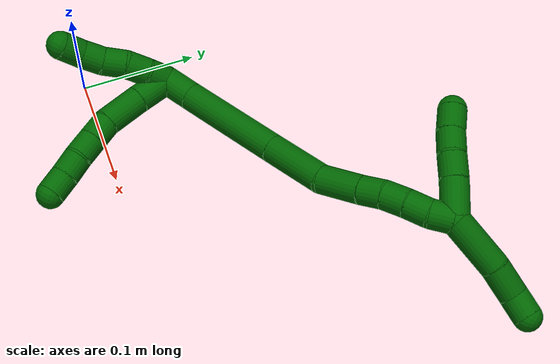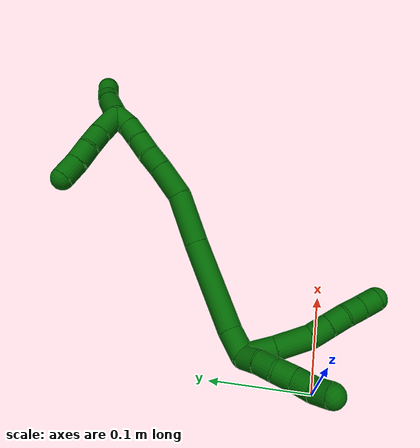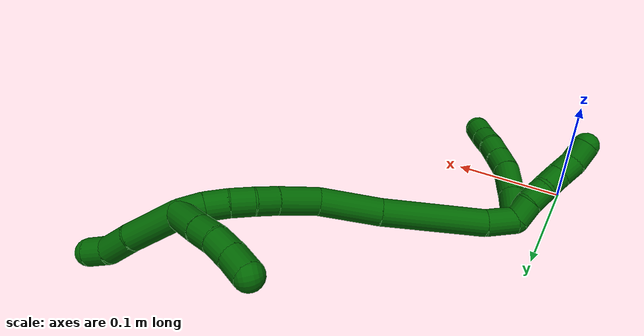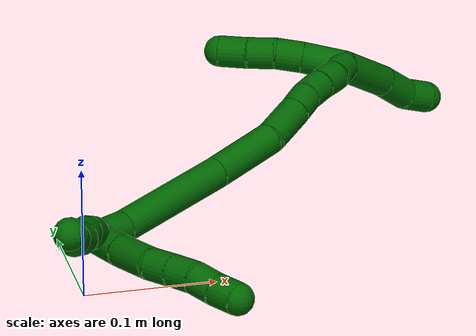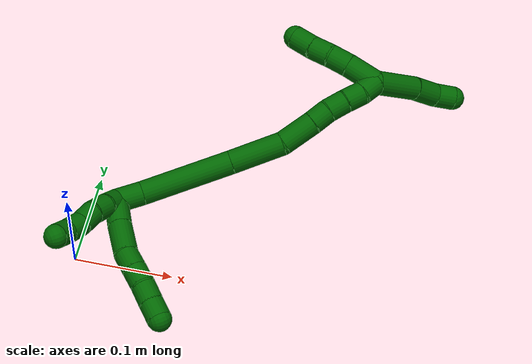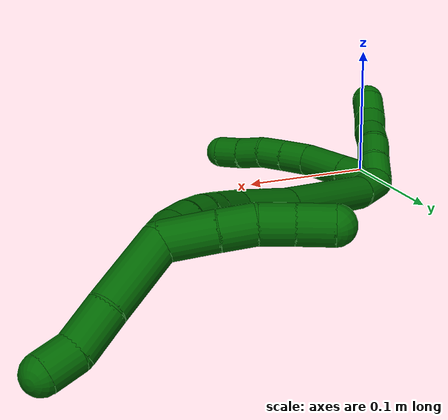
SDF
<sdf version="1.7">
 <world name="default">
  <model name="6">
   <static>0</static>
   <link name="6">
    <collision name="collision-cylinder-e_1_2_8">
     <pose>-0.002727 -0.015014 -0.005365 1.91398 -0.16939 -0.239826</pose>
     <geometry><cylinder><radius>0.0125</radius><length>0.03235</length></cylinder></geometry>
     <surface>
      <friction><ode><mu>1.16</mu><mu2>1.16</mu2><slip1>0</slip1><slip2>0</slip2></ode></friction>
      <contact><ode><kp>1e+06</kp><kd>1</kd><max_vel>0</max_vel><min_depth>0.001</min_depth></ode></contact>
     </surface>
    </collision>
    <visual name="visual-cylinder-e_1_2_8">
     <pose>-0.002727 -0.015014 -0.005365 1.91398 -0.16939 -0.239826</pose>
     <geometry><cylinder><radius>0.0125</radius><length>0.03235</length></cylinder></geometry>
     <material><ambient>0 0.392157 0.003922 1</ambient></material>
    </visual>
    <collision name="collision-cylinder-e_2_8_9">
     <pose>-0.009181 -0.047083 -0.015846 1.86223 -0.206349 -0.276545</pose>
     <geometry><cylinder><radius>0.0125</radius><length>0.036384</length></cylinder></geometry>
     <surface>
      <friction><ode><mu>1.16</mu><mu2>1.16</mu2><slip1>0</slip1><slip2>0</slip2></ode></friction>
      <contact><ode><kp>1e+06</kp><kd>1</kd><max_vel>0</max_vel><min_depth>0.001</min_depth></ode></contact>
     </surface>
    </collision>
    <visual name="visual-cylinder-e_2_8_9">
     <pose>-0.009181 -0.047083 -0.015846 1.86223 -0.206349 -0.276545</pose>
     <geometry><cylinder><radius>0.0125</radius><length>0.036384</length></cylinder></geometry>
     <material><ambient>0 0.392157 0.003922 1</ambient></material>
    </visual>
    <collision name="collision-cylinder-e_3_9_10">
     <pose>-0.014906 -0.074464 -0.021426 1.61575 -0.190956 -0.199682</pose>
     <geometry><cylinder><radius>0.0125</radius><length>0.021056</length></cylinder></geometry>
     <surface>
      <friction><ode><mu>1.16</mu><mu2>1.16</mu2><slip1>0</slip1><slip2>0</slip2></ode></friction>
      <contact><ode><kp>1e+06</kp><kd>1</kd><max_vel>0</max_vel><min_depth>0.001</min_depth></ode></contact>
     </surface>
    </collision>
    <visual name="visual-cylinder-e_3_9_10">
     <pose>-0.014906 -0.074464 -0.021426 1.61575 -0.190956 -0.199682</pose>
     <geometry><cylinder><radius>0.0125</radius><length>0.021056</length></cylinder></geometry>
     <material><ambient>0 0.392157 0.003922 1</ambient></material>
    </visual>
    <collision name="collision-cylinder-e_4_10_11">
     <pose>-0.018649 -0.094714 -0.022348 1.61683 -0.173784 -0.18193</pose>
     <geometry><cylinder><radius>0.0125</radius><length>0.020172</length></cylinder></geometry>
     <surface>
      <friction><ode><mu>1.16</mu><mu2>1.16</mu2><slip1>0</slip1><slip2>0</slip2></ode></friction>
      <contact><ode><kp>1e+06</kp><kd>1</kd><max_vel>0</max_vel><min_depth>0.001</min_depth></ode></contact>
     </surface>
    </collision>
    <visual name="visual-cylinder-e_4_10_11">
     <pose>-0.018649 -0.094714 -0.022348 1.61683 -0.173784 -0.18193</pose>
     <geometry><cylinder><radius>0.0125</radius><length>0.020172</length></cylinder></geometry>
     <material><ambient>0 0.392157 0.003922 1</ambient></material>
    </visual>
    <collision name="collision-cylinder-e_5_11_12">
     <pose>-0.020183 -0.114628 -0.023293 1.61965 0.02091 0.021958</pose>
     <geometry><cylinder><radius>0.0125</radius><length>0.020009</length></cylinder></geometry>
     <surface>
      <friction><ode><mu>1.16</mu><mu2>1.16</mu2><slip1>0</slip1><slip2>0</slip2></ode></friction>
      <contact><ode><kp>1e+06</kp><kd>1</kd><max_vel>0</max_vel><min_depth>0.001</min_depth></ode></contact>
     </surface>
    </collision>
    <visual name="visual-cylinder-e_5_11_12">
     <pose>-0.020183 -0.114628 -0.023293 1.61965 0.02091 0.021958</pose>
     <geometry><cylinder><radius>0.0125</radius><length>0.020009</length></cylinder></geometry>
     <material><ambient>0 0.392157 0.003922 1</ambient></material>
    </visual>
    <collision name="collision-cylinder-e_6_12_6">
     <pose>-0.020785 -0.134584 -0.024338 1.62656 -0.081048 -0.085693</pose>
     <geometry><cylinder><radius>0.0125</radius><length>0.02003</length></cylinder></geometry>
     <surface>
      <friction><ode><mu>1.16</mu><mu2>1.16</mu2><slip1>0</slip1><slip2>0</slip2></ode></friction>
      <contact><ode><kp>1e+06</kp><kd>1</kd><max_vel>0</max_vel><min_depth>0.001</min_depth></ode></contact>
     </surface>
    </collision>
    <visual name="visual-cylinder-e_6_12_6">
     <pose>-0.020785 -0.134584 -0.024338 1.62656 -0.081048 -0.085693</pose>
     <geometry><cylinder><radius>0.0125</radius><length>0.02003</length></cylinder></geometry>
     <material><ambient>0 0.392157 0.003922 1</ambient></material>
    </visual>
    <collision name="collision-cylinder-e_1_2_13">
     <pose>-0.005664 -0.002795 -0.007753 2.7956 -0.602097 -2.11635</pose>
     <geometry><cylinder><radius>0.0125</radius><length>0.02</length></cylinder></geometry>
     <surface>
      <friction><ode><mu>1.16</mu><mu2>1.16</mu2><slip1>0</slip1><slip2>0</slip2></ode></friction>
      <contact><ode><kp>1e+06</kp><kd>1</kd><max_vel>0</max_vel><min_depth>0.001</min_depth></ode></contact>
     </surface>
    </collision>
    <visual name="visual-cylinder-e_1_2_13">
     <pose>-0.005664 -0.002795 -0.007753 2.7956 -0.602097 -2.11635</pose>
     <geometry><cylinder><radius>0.0125</radius><length>0.02</length></cylinder></geometry>
     <material><ambient>0 0.392157 0.003922 1</ambient></material>
    </visual>
    <collision name="collision-cylinder-e_2_13_14">
     <pose>-0.015381 -0.008291 -0.02424 2.84162 -0.417372 -1.90198</pose>
     <geometry><cylinder><radius>0.0125</radius><length>0.02</length></cylinder></geometry>
     <surface>
      <friction><ode><mu>1.16</mu><mu2>1.16</mu2><slip1>0</slip1><slip2>0</slip2></ode></friction>
      <contact><ode><kp>1e+06</kp><kd>1</kd><max_vel>0</max_vel><min_depth>0.001</min_depth></ode></contact>
     </surface>
    </collision>
    <visual name="visual-cylinder-e_2_13_14">
     <pose>-0.015381 -0.008291 -0.02424 2.84162 -0.417372 -1.90198</pose>
     <geometry><cylinder><radius>0.0125</radius><length>0.02</length></cylinder></geometry>
     <material><ambient>0 0.392157 0.003922 1</ambient></material>
    </visual>
    <collision name="collision-cylinder-e_3_14_15">
     <pose>-0.021479 -0.015242 -0.041791 2.69257 -0.205912 -0.84978</pose>
     <geometry><cylinder><radius>0.0125</radius><length>0.02</length></cylinder></geometry>
     <surface>
      <friction><ode><mu>1.16</mu><mu2>1.16</mu2><slip1>0</slip1><slip2>0</slip2></ode></friction>
      <contact><ode><kp>1e+06</kp><kd>1</kd><max_vel>0</max_vel><min_depth>0.001</min_depth></ode></contact>
     </surface>
    </collision>
    <visual name="visual-cylinder-e_3_14_15">
     <pose>-0.021479 -0.015242 -0.041791 2.69257 -0.205912 -0.84978</pose>
     <geometry><cylinder><radius>0.0125</radius><length>0.02</length></cylinder></geometry>
     <material><ambient>0 0.392157 0.003922 1</ambient></material>
    </visual>
    <collision name="collision-cylinder-e_4_15_16">
     <pose>-0.026936 -0.022237 -0.0596 2.84515 -0.348233 -1.73389</pose>
     <geometry><cylinder><radius>0.0125</radius><length>0.02</length></cylinder></geometry>
     <surface>
      <friction><ode><mu>1.16</mu><mu2>1.16</mu2><slip1>0</slip1><slip2>0</slip2></ode></friction>
      <contact><ode><kp>1e+06</kp><kd>1</kd><max_vel>0</max_vel><min_depth>0.001</min_depth></ode></contact>
     </surface>
    </collision>
    <visual name="visual-cylinder-e_4_15_16">
     <pose>-0.026936 -0.022237 -0.0596 2.84515 -0.348233 -1.73389</pose>
     <geometry><cylinder><radius>0.0125</radius><length>0.02</length></cylinder></geometry>
     <material><ambient>0 0.392157 0.003922 1</ambient></material>
    </visual>
    <collision name="collision-cylinder-e_5_16_5">
     <pose>-0.036226 -0.027811 -0.076169 2.78447 -0.628327 -2.12754</pose>
     <geometry><cylinder><radius>0.0125</radius><length>0.02</length></cylinder></geometry>
     <surface>
      <friction><ode><mu>1.16</mu><mu2>1.16</mu2><slip1>0</slip1><slip2>0</slip2></ode></friction>
      <contact><ode><kp>1e+06</kp><kd>1</kd><max_vel>0</max_vel><min_depth>0.001</min_depth></ode></contact>
     </surface>
    </collision>
    <visual name="visual-cylinder-e_5_16_5">
     <pose>-0.036226 -0.027811 -0.076169 2.78447 -0.628327 -2.12754</pose>
     <geometry><cylinder><radius>0.0125</radius><length>0.02</length></cylinder></geometry>
     <material><ambient>0 0.392157 0.003922 1</ambient></material>
    </visual>
    <collision name="collision-cylinder-e_1_2_17">
     <pose>-0.000982 -0.001677 0.013924 0.119845 -0.069895 -0.004195</pose>
     <geometry><cylinder><radius>0.0125</radius><length>0.028118</length></cylinder></geometry>
     <surface>
      <friction><ode><mu>1.16</mu><mu2>1.16</mu2><slip1>0</slip1><slip2>0</slip2></ode></friction>
      <contact><ode><kp>1e+06</kp><kd>1</kd><max_vel>0</max_vel><min_depth>0.001</min_depth></ode></contact>
     </surface>
    </collision>
    <visual name="visual-cylinder-e_1_2_17">
     <pose>-0.000982 -0.001677 0.013924 0.119845 -0.069895 -0.004195</pose>
     <geometry><cylinder><radius>0.0125</radius><length>0.028118</length></cylinder></geometry>
     <material><ambient>0 0.392157 0.003922 1</ambient></material>
    </visual>
    <collision name="collision-cylinder-e_2_17_18">
     <pose>-0.014971 -0.011216 0.073738 0.169677 -0.272419 -0.02331</pose>
     <geometry><cylinder><radius>0.0125</radius><length>0.096682</length></cylinder></geometry>
     <surface>
      <friction><ode><mu>1.16</mu><mu2>1.16</mu2><slip1>0</slip1><slip2>0</slip2></ode></friction>
      <contact><ode><kp>1e+06</kp><kd>1</kd><max_vel>0</max_vel><min_depth>0.001</min_depth></ode></contact>
     </surface>
    </collision>
    <visual name="visual-cylinder-e_2_17_18">
     <pose>-0.014971 -0.011216 0.073738 0.169677 -0.272419 -0.02331</pose>
     <geometry><cylinder><radius>0.0125</radius><length>0.096682</length></cylinder></geometry>
     <material><ambient>0 0.392157 0.003922 1</ambient></material>
    </visual>
    <collision name="collision-cylinder-e_3_18_19">
     <pose>-0.037395 -0.023985 0.145682 0.186165 -0.34133 -0.032174</pose>
     <geometry><cylinder><radius>0.0125</radius><length>0.056269</length></cylinder></geometry>
     <surface>
      <friction><ode><mu>1.16</mu><mu2>1.16</mu2><slip1>0</slip1><slip2>0</slip2></ode></friction>
      <contact><ode><kp>1e+06</kp><kd>1</kd><max_vel>0</max_vel><min_depth>0.001</min_depth></ode></contact>
     </surface>
    </collision>
    <visual name="visual-cylinder-e_3_18_19">
     <pose>-0.037395 -0.023985 0.145682 0.186165 -0.34133 -0.032174</pose>
     <geometry><cylinder><radius>0.0125</radius><length>0.056269</length></cylinder></geometry>
     <material><ambient>0 0.392157 0.003922 1</ambient></material>
    </visual>
    <collision name="collision-cylinder-e_4_19_20">
     <pose>-0.052775 -0.026889 0.189158 -0.114419 -0.327689 0.018937</pose>
     <geometry><cylinder><radius>0.0125</radius><length>0.037048</length></cylinder></geometry>
     <surface>
      <friction><ode><mu>1.16</mu><mu2>1.16</mu2><slip1>0</slip1><slip2>0</slip2></ode></friction>
      <contact><ode><kp>1e+06</kp><kd>1</kd><max_vel>0</max_vel><min_depth>0.001</min_depth></ode></contact>
     </surface>
    </collision>
    <visual name="visual-cylinder-e_4_19_20">
     <pose>-0.052775 -0.026889 0.189158 -0.114419 -0.327689 0.018937</pose>
     <geometry><cylinder><radius>0.0125</radius><length>0.037048</length></cylinder></geometry>
     <material><ambient>0 0.392157 0.003922 1</ambient></material>
    </visual>
    <collision name="collision-cylinder-e_5_20_21">
     <pose>-0.061789 -0.02316 0.216045 -0.18055 -0.307253 0.028032</pose>
     <geometry><cylinder><radius>0.0125</radius><length>0.020184</length></cylinder></geometry>
     <surface>
      <friction><ode><mu>1.16</mu><mu2>1.16</mu2><slip1>0</slip1><slip2>0</slip2></ode></friction>
      <contact><ode><kp>1e+06</kp><kd>1</kd><max_vel>0</max_vel><min_depth>0.001</min_depth></ode></contact>
     </surface>
    </collision>
    <visual name="visual-cylinder-e_5_20_21">
     <pose>-0.061789 -0.02316 0.216045 -0.18055 -0.307253 0.028032</pose>
     <geometry><cylinder><radius>0.0125</radius><length>0.020184</length></cylinder></geometry>
     <material><ambient>0 0.392157 0.003922 1</ambient></material>
    </visual>
    <collision name="collision-cylinder-e_6_21_22">
     <pose>-0.066966 -0.020869 0.235548 -0.056018 -0.208182 0.005854</pose>
     <geometry><cylinder><radius>0.0125</radius><length>0.020557</length></cylinder></geometry>
     <surface>
      <friction><ode><mu>1.16</mu><mu2>1.16</mu2><slip1>0</slip1><slip2>0</slip2></ode></friction>
      <contact><ode><kp>1e+06</kp><kd>1</kd><max_vel>0</max_vel><min_depth>0.001</min_depth></ode></contact>
     </surface>
    </collision>
    <visual name="visual-cylinder-e_6_21_22">
     <pose>-0.066966 -0.020869 0.235548 -0.056018 -0.208182 0.005854</pose>
     <geometry><cylinder><radius>0.0125</radius><length>0.020557</length></cylinder></geometry>
     <material><ambient>0 0.392157 0.003922 1</ambient></material>
    </visual>
    <collision name="collision-cylinder-e_7_22_23">
     <pose>-0.070214 -0.019979 0.255779 -0.032068 -0.109808 0.001763</pose>
     <geometry><cylinder><radius>0.0125</radius><length>0.020514</length></cylinder></geometry>
     <surface>
      <friction><ode><mu>1.16</mu><mu2>1.16</mu2><slip1>0</slip1><slip2>0</slip2></ode></friction>
      <contact><ode><kp>1e+06</kp><kd>1</kd><max_vel>0</max_vel><min_depth>0.001</min_depth></ode></contact>
     </surface>
    </collision>
    <visual name="visual-cylinder-e_7_22_23">
     <pose>-0.070214 -0.019979 0.255779 -0.032068 -0.109808 0.001763</pose>
     <geometry><cylinder><radius>0.0125</radius><length>0.020514</length></cylinder></geometry>
     <material><ambient>0 0.392157 0.003922 1</ambient></material>
    </visual>
    <collision name="collision-cylinder-e_8_23_1">
     <pose>-0.071932 -0.017195 0.275968 -0.240973 -0.057638 0.00698</pose>
     <geometry><cylinder><radius>0.0125</radius><length>0.020629</length></cylinder></geometry>
     <surface>
      <friction><ode><mu>1.16</mu><mu2>1.16</mu2><slip1>0</slip1><slip2>0</slip2></ode></friction>
      <contact><ode><kp>1e+06</kp><kd>1</kd><max_vel>0</max_vel><min_depth>0.001</min_depth></ode></contact>
     </surface>
    </collision>
    <visual name="visual-cylinder-e_8_23_1">
     <pose>-0.071932 -0.017195 0.275968 -0.240973 -0.057638 0.00698</pose>
     <geometry><cylinder><radius>0.0125</radius><length>0.020629</length></cylinder></geometry>
     <material><ambient>0 0.392157 0.003922 1</ambient></material>
    </visual>
    <collision name="collision-cylinder-e_1_1_24">
     <pose>-0.062608 -0.021127 0.308005 0.282201 0.407995 0.058754</pose>
     <geometry><cylinder><radius>0.0125</radius><length>0.049994</length></cylinder></geometry>
     <surface>
      <friction><ode><mu>1.16</mu><mu2>1.16</mu2><slip1>0</slip1><slip2>0</slip2></ode></friction>
      <contact><ode><kp>1e+06</kp><kd>1</kd><max_vel>0</max_vel><min_depth>0.001</min_depth></ode></contact>
     </surface>
    </collision>
    <visual name="visual-cylinder-e_1_1_24">
     <pose>-0.062608 -0.021127 0.308005 0.282201 0.407995 0.058754</pose>
     <geometry><cylinder><radius>0.0125</radius><length>0.049994</length></cylinder></geometry>
     <material><ambient>0 0.392157 0.003922 1</ambient></material>
    </visual>
    <collision name="collision-cylinder-e_2_24_25">
     <pose>-0.045723 -0.032281 0.341787 0.385362 0.502632 0.100099</pose>
     <geometry><cylinder><radius>0.0125</radius><length>0.028924</length></cylinder></geometry>
     <surface>
      <friction><ode><mu>1.16</mu><mu2>1.16</mu2><slip1>0</slip1><slip2>0</slip2></ode></friction>
      <contact><ode><kp>1e+06</kp><kd>1</kd><max_vel>0</max_vel><min_depth>0.001</min_depth></ode></contact>
     </surface>
    </collision>
    <visual name="visual-cylinder-e_2_24_25">
     <pose>-0.045723 -0.032281 0.341787 0.385362 0.502632 0.100099</pose>
     <geometry><cylinder><radius>0.0125</radius><length>0.028924</length></cylinder></geometry>
     <material><ambient>0 0.392157 0.003922 1</ambient></material>
    </visual>
    <collision name="collision-cylinder-e_3_25_4">
     <pose>-0.036887 -0.04186 0.362719 0.482744 0.178267 0.043994</pose>
     <geometry><cylinder><radius>0.0125</radius><length>0.021082</length></cylinder></geometry>
     <surface>
      <friction><ode><mu>1.16</mu><mu2>1.16</mu2><slip1>0</slip1><slip2>0</slip2></ode></friction>
      <contact><ode><kp>1e+06</kp><kd>1</kd><max_vel>0</max_vel><min_depth>0.001</min_depth></ode></contact>
     </surface>
    </collision>
    <visual name="visual-cylinder-e_3_25_4">
     <pose>-0.036887 -0.04186 0.362719 0.482744 0.178267 0.043994</pose>
     <geometry><cylinder><radius>0.0125</radius><length>0.021082</length></cylinder></geometry>
     <material><ambient>0 0.392157 0.003922 1</ambient></material>
    </visual>
    <collision name="collision-cylinder-e_1_1_26">
     <pose>-0.07242 -6e-05 0.277891 -2.07388 0.006321 -0.010693</pose>
     <geometry><cylinder><radius>0.0125</radius><length>0.033507</length></cylinder></geometry>
     <surface>
      <friction><ode><mu>1.16</mu><mu2>1.16</mu2><slip1>0</slip1><slip2>0</slip2></ode></friction>
      <contact><ode><kp>1e+06</kp><kd>1</kd><max_vel>0</max_vel><min_depth>0.001</min_depth></ode></contact>
     </surface>
    </collision>
    <visual name="visual-cylinder-e_1_1_26">
     <pose>-0.07242 -6e-05 0.277891 -2.07388 0.006321 -0.010693</pose>
     <geometry><cylinder><radius>0.0125</radius><length>0.033507</length></cylinder></geometry>
     <material><ambient>0 0.392157 0.003922 1</ambient></material>
    </visual>
    <collision name="collision-cylinder-e_2_26_27">
     <pose>-0.07183 0.02384 0.264009 -2.13254 0.044449 -0.080464</pose>
     <geometry><cylinder><radius>0.0125</radius><length>0.021815</length></cylinder></geometry>
     <surface>
      <friction><ode><mu>1.16</mu><mu2>1.16</mu2><slip1>0</slip1><slip2>0</slip2></ode></friction>
      <contact><ode><kp>1e+06</kp><kd>1</kd><max_vel>0</max_vel><min_depth>0.001</min_depth></ode></contact>
     </surface>
    </collision>
    <visual name="visual-cylinder-e_2_26_27">
     <pose>-0.07183 0.02384 0.264009 -2.13254 0.044449 -0.080464</pose>
     <geometry><cylinder><radius>0.0125</radius><length>0.021815</length></cylinder></geometry>
     <material><ambient>0 0.392157 0.003922 1</ambient></material>
    </visual>
    <collision name="collision-cylinder-e_3_27_28">
     <pose>-0.069005 0.042301 0.253117 -2.07417 0.218377 -0.366863</pose>
     <geometry><cylinder><radius>0.0125</radius><length>0.021607</length></cylinder></geometry>
     <surface>
      <friction><ode><mu>1.16</mu><mu2>1.16</mu2><slip1>0</slip1><slip2>0</slip2></ode></friction>
      <contact><ode><kp>1e+06</kp><kd>1</kd><max_vel>0</max_vel><min_depth>0.001</min_depth></ode></contact>
     </surface>
    </collision>
    <visual name="visual-cylinder-e_3_27_28">
     <pose>-0.069005 0.042301 0.253117 -2.07417 0.218377 -0.366863</pose>
     <geometry><cylinder><radius>0.0125</radius><length>0.021607</length></cylinder></geometry>
     <material><ambient>0 0.392157 0.003922 1</ambient></material>
    </visual>
    <collision name="collision-cylinder-e_4_28_3">
     <pose>-0.064424 0.061927 0.243541 -1.97868 0.19539 -0.296051</pose>
     <geometry><cylinder><radius>0.0125</radius><length>0.023071</length></cylinder></geometry>
     <surface>
      <friction><ode><mu>1.16</mu><mu2>1.16</mu2><slip1>0</slip1><slip2>0</slip2></ode></friction>
      <contact><ode><kp>1e+06</kp><kd>1</kd><max_vel>0</max_vel><min_depth>0.001</min_depth></ode></contact>
     </surface>
    </collision>
    <visual name="visual-cylinder-e_4_28_3">
     <pose>-0.064424 0.061927 0.243541 -1.97868 0.19539 -0.296051</pose>
     <geometry><cylinder><radius>0.0125</radius><length>0.023071</length></cylinder></geometry>
     <material><ambient>0 0.392157 0.003922 1</ambient></material>
    </visual>
    <collision name="collision-sphere-3">
     <pose>-0.062185 0.072314 0.239052 0 -0 0</pose>
     <geometry><sphere><radius>0.0125</radius></sphere></geometry>
     <surface>
      <friction><ode><mu>1.16</mu><mu2>1.16</mu2><slip1>0</slip1><slip2>0</slip2></ode></friction>
      <contact><ode><kp>1e+06</kp><kd>1</kd><max_vel>0</max_vel><min_depth>0.001</min_depth></ode></contact>
     </surface>
    </collision>
    <visual name="visual-sphere-3">
     <pose>-0.062185 0.072314 0.239052 0 -0 0</pose>
     <geometry><sphere><radius>0.0125</radius></sphere></geometry>
     <material><ambient>0 0.392157 0.003922 1</ambient></material>
    </visual>
    <collision name="collision-sphere-28">
     <pose>-0.066664 0.051539 0.248029 0 -0 0</pose>
     <geometry><sphere><radius>0.0125</radius></sphere></geometry>
     <surface>
      <friction><ode><mu>1.16</mu><mu2>1.16</mu2><slip1>0</slip1><slip2>0</slip2></ode></friction>
      <contact><ode><kp>1e+06</kp><kd>1</kd><max_vel>0</max_vel><min_depth>0.001</min_depth></ode></contact>
     </surface>
    </collision>
    <visual name="visual-sphere-28">
     <pose>-0.066664 0.051539 0.248029 0 -0 0</pose>
     <geometry><sphere><radius>0.0125</radius></sphere></geometry>
     <material><ambient>0 0.392157 0.003922 1</ambient></material>
    </visual>
    <collision name="collision-sphere-27">
     <pose>-0.071345 0.033062 0.258205 0 -0 0</pose>
     <geometry><sphere><radius>0.0125</radius></sphere></geometry>
     <surface>
      <friction><ode><mu>1.16</mu><mu2>1.16</mu2><slip1>0</slip1><slip2>0</slip2></ode></friction>
      <contact><ode><kp>1e+06</kp><kd>1</kd><max_vel>0</max_vel><min_depth>0.001</min_depth></ode></contact>
     </surface>
    </collision>
    <visual name="visual-sphere-27">
     <pose>-0.071345 0.033062 0.258205 0 -0 0</pose>
     <geometry><sphere><radius>0.0125</radius></sphere></geometry>
     <material><ambient>0 0.392157 0.003922 1</ambient></material>
    </visual>
    <collision name="collision-sphere-26">
     <pose>-0.072314 0.014617 0.269813 0 -0 0</pose>
     <geometry><sphere><radius>0.0125</radius></sphere></geometry>
     <surface>
      <friction><ode><mu>1.16</mu><mu2>1.16</mu2><slip1>0</slip1><slip2>0</slip2></ode></friction>
      <contact><ode><kp>1e+06</kp><kd>1</kd><max_vel>0</max_vel><min_depth>0.001</min_depth></ode></contact>
     </surface>
    </collision>
    <visual name="visual-sphere-26">
     <pose>-0.072314 0.014617 0.269813 0 -0 0</pose>
     <geometry><sphere><radius>0.0125</radius></sphere></geometry>
     <material><ambient>0 0.392157 0.003922 1</ambient></material>
    </visual>
    <collision name="collision-sphere-4">
     <pose>-0.035018 -0.046676 0.371908 0 -0 0</pose>
     <geometry><sphere><radius>0.0125</radius></sphere></geometry>
     <surface>
      <friction><ode><mu>1.16</mu><mu2>1.16</mu2><slip1>0</slip1><slip2>0</slip2></ode></friction>
      <contact><ode><kp>1e+06</kp><kd>1</kd><max_vel>0</max_vel><min_depth>0.001</min_depth></ode></contact>
     </surface>
    </collision>
    <visual name="visual-sphere-4">
     <pose>-0.035018 -0.046676 0.371908 0 -0 0</pose>
     <geometry><sphere><radius>0.0125</radius></sphere></geometry>
     <material><ambient>0 0.392157 0.003922 1</ambient></material>
    </visual>
    <collision name="collision-sphere-25">
     <pose>-0.038756 -0.037045 0.353531 0 -0 0</pose>
     <geometry><sphere><radius>0.0125</radius></sphere></geometry>
     <surface>
      <friction><ode><mu>1.16</mu><mu2>1.16</mu2><slip1>0</slip1><slip2>0</slip2></ode></friction>
      <contact><ode><kp>1e+06</kp><kd>1</kd><max_vel>0</max_vel><min_depth>0.001</min_depth></ode></contact>
     </surface>
    </collision>
    <visual name="visual-sphere-25">
     <pose>-0.038756 -0.037045 0.353531 0 -0 0</pose>
     <geometry><sphere><radius>0.0125</radius></sphere></geometry>
     <material><ambient>0 0.392157 0.003922 1</ambient></material>
    </visual>
    <collision name="collision-sphere-24">
     <pose>-0.05269 -0.027517 0.330043 0 -0 0</pose>
     <geometry><sphere><radius>0.0125</radius></sphere></geometry>
     <surface>
      <friction><ode><mu>1.16</mu><mu2>1.16</mu2><slip1>0</slip1><slip2>0</slip2></ode></friction>
      <contact><ode><kp>1e+06</kp><kd>1</kd><max_vel>0</max_vel><min_depth>0.001</min_depth></ode></contact>
     </surface>
    </collision>
    <visual name="visual-sphere-24">
     <pose>-0.05269 -0.027517 0.330043 0 -0 0</pose>
     <geometry><sphere><radius>0.0125</radius></sphere></geometry>
     <material><ambient>0 0.392157 0.003922 1</ambient></material>
    </visual>
    <collision name="collision-sphere-1">
     <pose>-0.072526 -0.014738 0.285968 0 -0 0</pose>
     <geometry><sphere><radius>0.0125</radius></sphere></geometry>
     <surface>
      <friction><ode><mu>1.16</mu><mu2>1.16</mu2><slip1>0</slip1><slip2>0</slip2></ode></friction>
      <contact><ode><kp>1e+06</kp><kd>1</kd><max_vel>0</max_vel><min_depth>0.001</min_depth></ode></contact>
     </surface>
    </collision>
    <visual name="visual-sphere-1">
     <pose>-0.072526 -0.014738 0.285968 0 -0 0</pose>
     <geometry><sphere><radius>0.0125</radius></sphere></geometry>
     <material><ambient>0 0.392157 0.003922 1</ambient></material>
    </visual>
    <collision name="collision-sphere-23">
     <pose>-0.071338 -0.019653 0.265969 0 -0 0</pose>
     <geometry><sphere><radius>0.0125</radius></sphere></geometry>
     <surface>
      <friction><ode><mu>1.16</mu><mu2>1.16</mu2><slip1>0</slip1><slip2>0</slip2></ode></friction>
      <contact><ode><kp>1e+06</kp><kd>1</kd><max_vel>0</max_vel><min_depth>0.001</min_depth></ode></contact>
     </surface>
    </collision>
    <visual name="visual-sphere-23">
     <pose>-0.071338 -0.019653 0.265969 0 -0 0</pose>
     <geometry><sphere><radius>0.0125</radius></sphere></geometry>
     <material><ambient>0 0.392157 0.003922 1</ambient></material>
    </visual>
    <collision name="collision-sphere-22">
     <pose>-0.06909 -0.020306 0.245589 0 -0 0</pose>
     <geometry><sphere><radius>0.0125</radius></sphere></geometry>
     <surface>
      <friction><ode><mu>1.16</mu><mu2>1.16</mu2><slip1>0</slip1><slip2>0</slip2></ode></friction>
      <contact><ode><kp>1e+06</kp><kd>1</kd><max_vel>0</max_vel><min_depth>0.001</min_depth></ode></contact>
     </surface>
    </collision>
    <visual name="visual-sphere-22">
     <pose>-0.06909 -0.020306 0.245589 0 -0 0</pose>
     <geometry><sphere><radius>0.0125</radius></sphere></geometry>
     <material><ambient>0 0.392157 0.003922 1</ambient></material>
    </visual>
    <collision name="collision-sphere-21">
     <pose>-0.064841 -0.021432 0.225508 0 -0 0</pose>
     <geometry><sphere><radius>0.0125</radius></sphere></geometry>
     <surface>
      <friction><ode><mu>1.16</mu><mu2>1.16</mu2><slip1>0</slip1><slip2>0</slip2></ode></friction>
      <contact><ode><kp>1e+06</kp><kd>1</kd><max_vel>0</max_vel><min_depth>0.001</min_depth></ode></contact>
     </surface>
    </collision>
    <visual name="visual-sphere-21">
     <pose>-0.064841 -0.021432 0.225508 0 -0 0</pose>
     <geometry><sphere><radius>0.0125</radius></sphere></geometry>
     <material><ambient>0 0.392157 0.003922 1</ambient></material>
    </visual>
    <collision name="collision-sphere-12">
     <pose>-0.019974 -0.124618 -0.023782 0 -0 0</pose>
     <geometry><sphere><radius>0.0125</radius></sphere></geometry>
     <surface>
      <friction><ode><mu>1.16</mu><mu2>1.16</mu2><slip1>0</slip1><slip2>0</slip2></ode></friction>
      <contact><ode><kp>1e+06</kp><kd>1</kd><max_vel>0</max_vel><min_depth>0.001</min_depth></ode></contact>
     </surface>
    </collision>
    <visual name="visual-sphere-12">
     <pose>-0.019974 -0.124618 -0.023782 0 -0 0</pose>
     <geometry><sphere><radius>0.0125</radius></sphere></geometry>
     <material><ambient>0 0.392157 0.003922 1</ambient></material>
    </visual>
    <collision name="collision-sphere-11">
     <pose>-0.020393 -0.104637 -0.022805 0 -0 0</pose>
     <geometry><sphere><radius>0.0125</radius></sphere></geometry>
     <surface>
      <friction><ode><mu>1.16</mu><mu2>1.16</mu2><slip1>0</slip1><slip2>0</slip2></ode></friction>
      <contact><ode><kp>1e+06</kp><kd>1</kd><max_vel>0</max_vel><min_depth>0.001</min_depth></ode></contact>
     </surface>
    </collision>
    <visual name="visual-sphere-11">
     <pose>-0.020393 -0.104637 -0.022805 0 -0 0</pose>
     <geometry><sphere><radius>0.0125</radius></sphere></geometry>
     <material><ambient>0 0.392157 0.003922 1</ambient></material>
    </visual>
    <collision name="collision-sphere-10">
     <pose>-0.016905 -0.084791 -0.021891 0 -0 0</pose>
     <geometry><sphere><radius>0.0125</radius></sphere></geometry>
     <surface>
      <friction><ode><mu>1.16</mu><mu2>1.16</mu2><slip1>0</slip1><slip2>0</slip2></ode></friction>
      <contact><ode><kp>1e+06</kp><kd>1</kd><max_vel>0</max_vel><min_depth>0.001</min_depth></ode></contact>
     </surface>
    </collision>
    <visual name="visual-sphere-10">
     <pose>-0.016905 -0.084791 -0.021891 0 -0 0</pose>
     <geometry><sphere><radius>0.0125</radius></sphere></geometry>
     <material><ambient>0 0.392157 0.003922 1</ambient></material>
    </visual>
    <collision name="collision-sphere-9">
     <pose>-0.012908 -0.064138 -0.020962 0 -0 0</pose>
     <geometry><sphere><radius>0.0125</radius></sphere></geometry>
     <surface>
      <friction><ode><mu>1.16</mu><mu2>1.16</mu2><slip1>0</slip1><slip2>0</slip2></ode></friction>
      <contact><ode><kp>1e+06</kp><kd>1</kd><max_vel>0</max_vel><min_depth>0.001</min_depth></ode></contact>
     </surface>
    </collision>
    <visual name="visual-sphere-9">
     <pose>-0.012908 -0.064138 -0.020962 0 -0 0</pose>
     <geometry><sphere><radius>0.0125</radius></sphere></geometry>
     <material><ambient>0 0.392157 0.003922 1</ambient></material>
    </visual>
    <collision name="collision-sphere-2">
     <geometry><sphere><radius>0.0125</radius></sphere></geometry>
     <surface>
      <friction><ode><mu>1.16</mu><mu2>1.16</mu2><slip1>0</slip1><slip2>0</slip2></ode></friction>
      <contact><ode><kp>1e+06</kp><kd>1</kd><max_vel>0</max_vel><min_depth>0.001</min_depth></ode></contact>
     </surface>
    </collision>
    <visual name="visual-sphere-2">
     <geometry><sphere><radius>0.0125</radius></sphere></geometry>
     <material><ambient>0 0.392157 0.003922 1</ambient></material>
    </visual>
    <collision name="collision-sphere-19">
     <pose>-0.046813 -0.028892 0.171735 0 -0 0</pose>
     <geometry><sphere><radius>0.0125</radius></sphere></geometry>
     <surface>
      <friction><ode><mu>1.16</mu><mu2>1.16</mu2><slip1>0</slip1><slip2>0</slip2></ode></friction>
      <contact><ode><kp>1e+06</kp><kd>1</kd><max_vel>0</max_vel><min_depth>0.001</min_depth></ode></contact>
     </surface>
    </collision>
    <visual name="visual-sphere-19">
     <pose>-0.046813 -0.028892 0.171735 0 -0 0</pose>
     <geometry><sphere><radius>0.0125</radius></sphere></geometry>
     <material><ambient>0 0.392157 0.003922 1</ambient></material>
    </visual>
    <collision name="collision-sphere-8">
     <pose>-0.005454 -0.030028 -0.010729 0 -0 0</pose>
     <geometry><sphere><radius>0.0125</radius></sphere></geometry>
     <surface>
      <friction><ode><mu>1.16</mu><mu2>1.16</mu2><slip1>0</slip1><slip2>0</slip2></ode></friction>
      <contact><ode><kp>1e+06</kp><kd>1</kd><max_vel>0</max_vel><min_depth>0.001</min_depth></ode></contact>
     </surface>
    </collision>
    <visual name="visual-sphere-8">
     <pose>-0.005454 -0.030028 -0.010729 0 -0 0</pose>
     <geometry><sphere><radius>0.0125</radius></sphere></geometry>
     <material><ambient>0 0.392157 0.003922 1</ambient></material>
    </visual>
    <collision name="collision-sphere-6">
     <pose>-0.021596 -0.144551 -0.024895 0 -0 0</pose>
     <geometry><sphere><radius>0.0125</radius></sphere></geometry>
     <surface>
      <friction><ode><mu>1.16</mu><mu2>1.16</mu2><slip1>0</slip1><slip2>0</slip2></ode></friction>
      <contact><ode><kp>1e+06</kp><kd>1</kd><max_vel>0</max_vel><min_depth>0.001</min_depth></ode></contact>
     </surface>
    </collision>
    <visual name="visual-sphere-6">
     <pose>-0.021596 -0.144551 -0.024895 0 -0 0</pose>
     <geometry><sphere><radius>0.0125</radius></sphere></geometry>
     <material><ambient>0 0.392157 0.003922 1</ambient></material>
    </visual>
    <collision name="collision-sphere-13">
     <pose>-0.011327 -0.00559 -0.015506 0 -0 0</pose>
     <geometry><sphere><radius>0.0125</radius></sphere></geometry>
     <surface>
      <friction><ode><mu>1.16</mu><mu2>1.16</mu2><slip1>0</slip1><slip2>0</slip2></ode></friction>
      <contact><ode><kp>1e+06</kp><kd>1</kd><max_vel>0</max_vel><min_depth>0.001</min_depth></ode></contact>
     </surface>
    </collision>
    <visual name="visual-sphere-13">
     <pose>-0.011327 -0.00559 -0.015506 0 -0 0</pose>
     <geometry><sphere><radius>0.0125</radius></sphere></geometry>
     <material><ambient>0 0.392157 0.003922 1</ambient></material>
    </visual>
    <collision name="collision-sphere-14">
     <pose>-0.019435 -0.010992 -0.032973 0 -0 0</pose>
     <geometry><sphere><radius>0.0125</radius></sphere></geometry>
     <surface>
      <friction><ode><mu>1.16</mu><mu2>1.16</mu2><slip1>0</slip1><slip2>0</slip2></ode></friction>
      <contact><ode><kp>1e+06</kp><kd>1</kd><max_vel>0</max_vel><min_depth>0.001</min_depth></ode></contact>
     </surface>
    </collision>
    <visual name="visual-sphere-14">
     <pose>-0.019435 -0.010992 -0.032973 0 -0 0</pose>
     <geometry><sphere><radius>0.0125</radius></sphere></geometry>
     <material><ambient>0 0.392157 0.003922 1</ambient></material>
    </visual>
    <collision name="collision-sphere-15">
     <pose>-0.023524 -0.019491 -0.05061 0 -0 0</pose>
     <geometry><sphere><radius>0.0125</radius></sphere></geometry>
     <surface>
      <friction><ode><mu>1.16</mu><mu2>1.16</mu2><slip1>0</slip1><slip2>0</slip2></ode></friction>
      <contact><ode><kp>1e+06</kp><kd>1</kd><max_vel>0</max_vel><min_depth>0.001</min_depth></ode></contact>
     </surface>
    </collision>
    <visual name="visual-sphere-15">
     <pose>-0.023524 -0.019491 -0.05061 0 -0 0</pose>
     <geometry><sphere><radius>0.0125</radius></sphere></geometry>
     <material><ambient>0 0.392157 0.003922 1</ambient></material>
    </visual>
    <collision name="collision-sphere-16">
     <pose>-0.030349 -0.024982 -0.068589 0 -0 0</pose>
     <geometry><sphere><radius>0.0125</radius></sphere></geometry>
     <surface>
      <friction><ode><mu>1.16</mu><mu2>1.16</mu2><slip1>0</slip1><slip2>0</slip2></ode></friction>
      <contact><ode><kp>1e+06</kp><kd>1</kd><max_vel>0</max_vel><min_depth>0.001</min_depth></ode></contact>
     </surface>
    </collision>
    <visual name="visual-sphere-16">
     <pose>-0.030349 -0.024982 -0.068589 0 -0 0</pose>
     <geometry><sphere><radius>0.0125</radius></sphere></geometry>
     <material><ambient>0 0.392157 0.003922 1</ambient></material>
    </visual>
    <collision name="collision-sphere-5">
     <pose>-0.042104 -0.030639 -0.083749 0 -0 0</pose>
     <geometry><sphere><radius>0.0125</radius></sphere></geometry>
     <surface>
      <friction><ode><mu>1.16</mu><mu2>1.16</mu2><slip1>0</slip1><slip2>0</slip2></ode></friction>
      <contact><ode><kp>1e+06</kp><kd>1</kd><max_vel>0</max_vel><min_depth>0.001</min_depth></ode></contact>
     </surface>
    </collision>
    <visual name="visual-sphere-5">
     <pose>-0.042104 -0.030639 -0.083749 0 -0 0</pose>
     <geometry><sphere><radius>0.0125</radius></sphere></geometry>
     <material><ambient>0 0.392157 0.003922 1</ambient></material>
    </visual>
    <collision name="collision-sphere-17">
     <pose>-0.001964 -0.003354 0.027849 0 -0 0</pose>
     <geometry><sphere><radius>0.0125</radius></sphere></geometry>
     <surface>
      <friction><ode><mu>1.16</mu><mu2>1.16</mu2><slip1>0</slip1><slip2>0</slip2></ode></friction>
      <contact><ode><kp>1e+06</kp><kd>1</kd><max_vel>0</max_vel><min_depth>0.001</min_depth></ode></contact>
     </surface>
    </collision>
    <visual name="visual-sphere-17">
     <pose>-0.001964 -0.003354 0.027849 0 -0 0</pose>
     <geometry><sphere><radius>0.0125</radius></sphere></geometry>
     <material><ambient>0 0.392157 0.003922 1</ambient></material>
    </visual>
    <collision name="collision-sphere-18">
     <pose>-0.027977 -0.019078 0.119628 0 -0 0</pose>
     <geometry><sphere><radius>0.0125</radius></sphere></geometry>
     <surface>
      <friction><ode><mu>1.16</mu><mu2>1.16</mu2><slip1>0</slip1><slip2>0</slip2></ode></friction>
      <contact><ode><kp>1e+06</kp><kd>1</kd><max_vel>0</max_vel><min_depth>0.001</min_depth></ode></contact>
     </surface>
    </collision>
    <visual name="visual-sphere-18">
     <pose>-0.027977 -0.019078 0.119628 0 -0 0</pose>
     <geometry><sphere><radius>0.0125</radius></sphere></geometry>
     <material><ambient>0 0.392157 0.003922 1</ambient></material>
    </visual>
    <collision name="collision-sphere-20">
     <pose>-0.058737 -0.024887 0.206582 0 -0 0</pose>
     <geometry><sphere><radius>0.0125</radius></sphere></geometry>
     <surface>
      <friction><ode><mu>1.16</mu><mu2>1.16</mu2><slip1>0</slip1><slip2>0</slip2></ode></friction>
      <contact><ode><kp>1e+06</kp><kd>1</kd><max_vel>0</max_vel><min_depth>0.001</min_depth></ode></contact>
     </surface>
    </collision>
    <visual name="visual-sphere-20">
     <pose>-0.058737 -0.024887 0.206582 0 -0 0</pose>
     <geometry><sphere><radius>0.0125</radius></sphere></geometry>
     <material><ambient>0 0.392157 0.003922 1</ambient></material>
    </visual>
    <inertial>
     <pose>-0.036439 -0.023125 0.126882 0 -0 0</pose>
     <mass>0.75</mass>
     <inertia><ixx>0.000127</ixx><ixy>0</ixy><ixz>0</ixz><iyy>9.9e-05</iyy><iyz>0</iyz><izz>7.3e-05</izz></inertia>
    </inertial>
   </link>
   <pose>0.024643 0.069365 0.013156 2.00899 1.38739 2.72186</pose>
  </model>
 </world>
</sdf>
